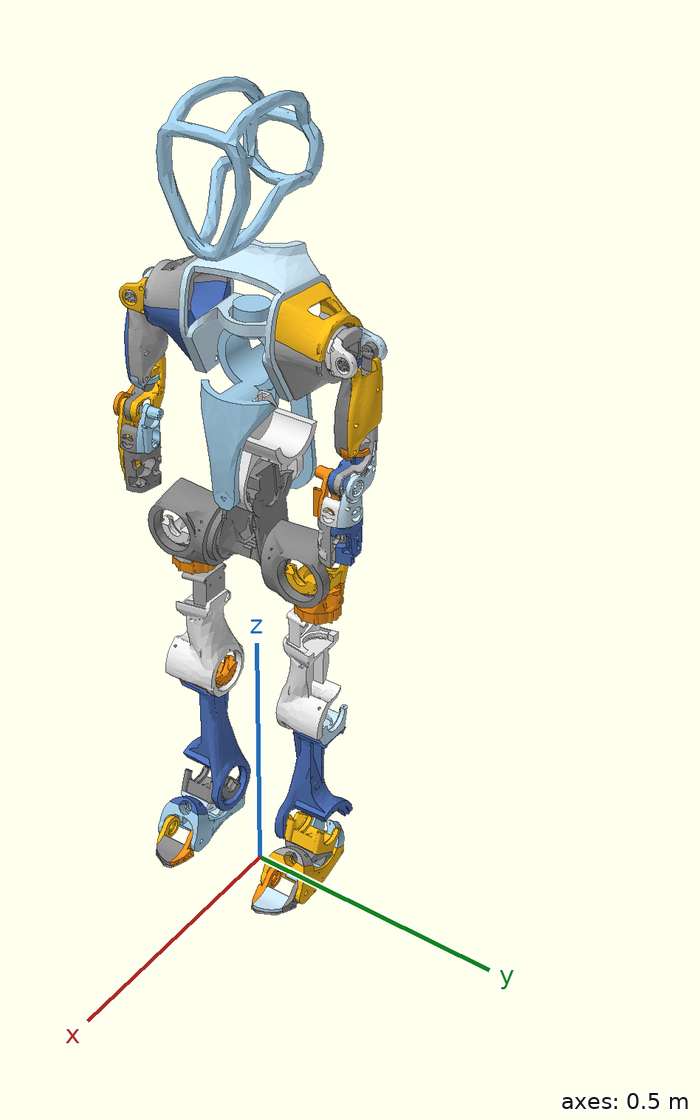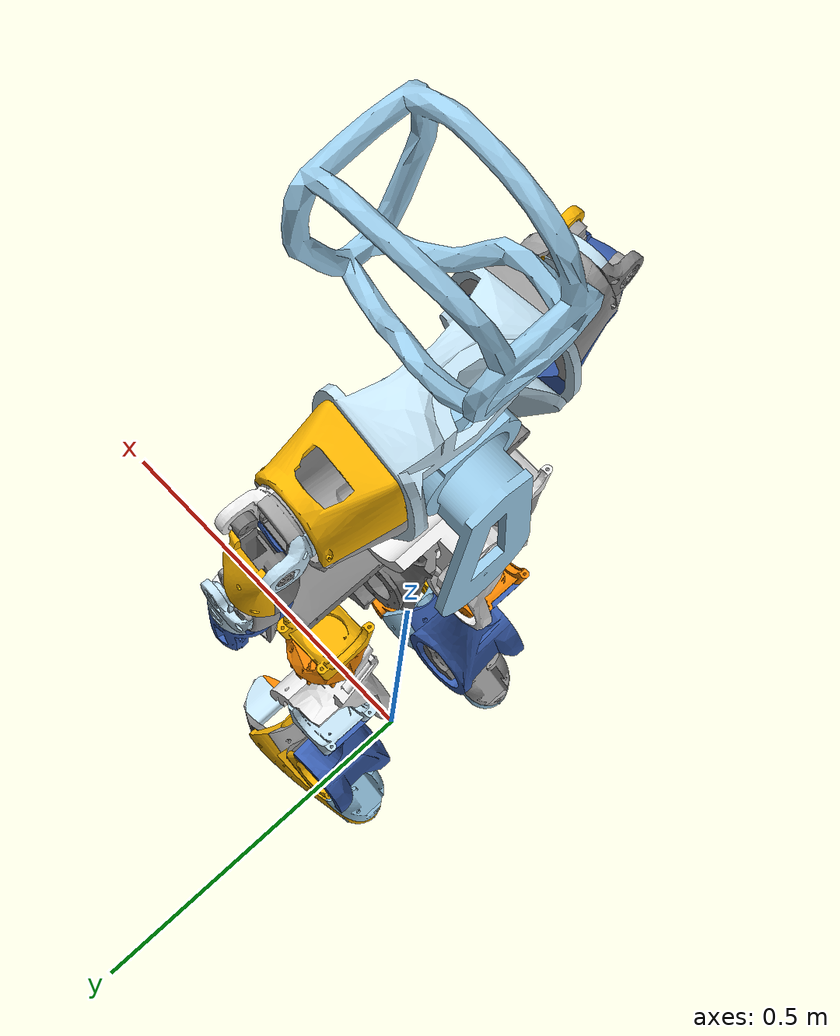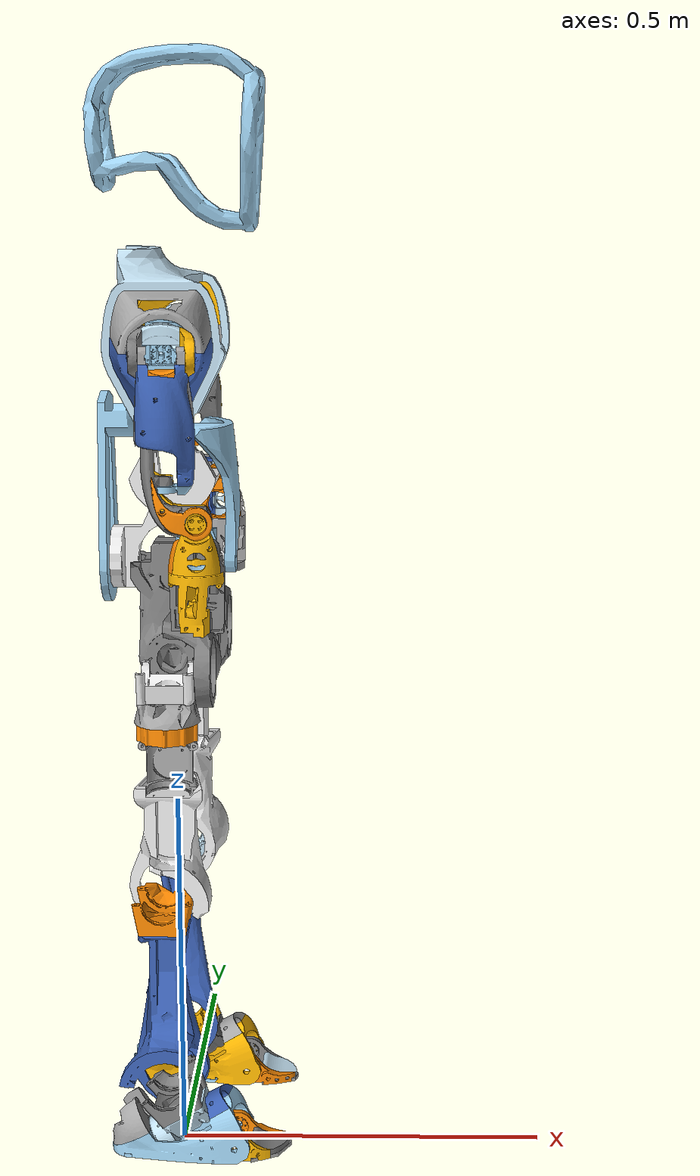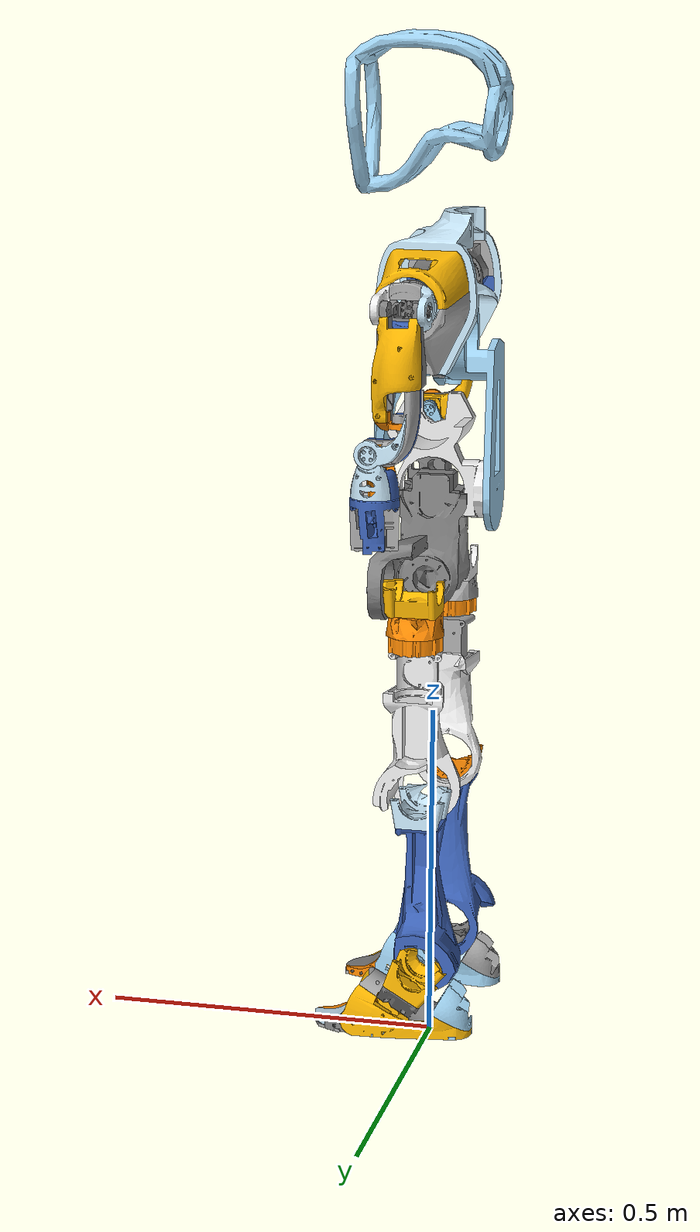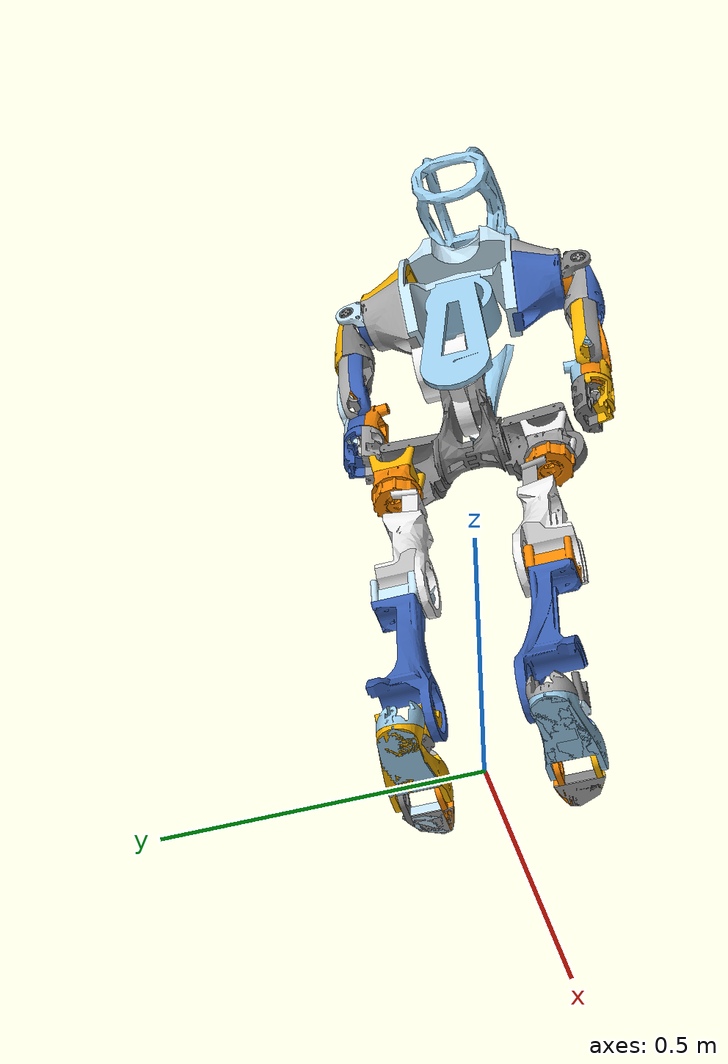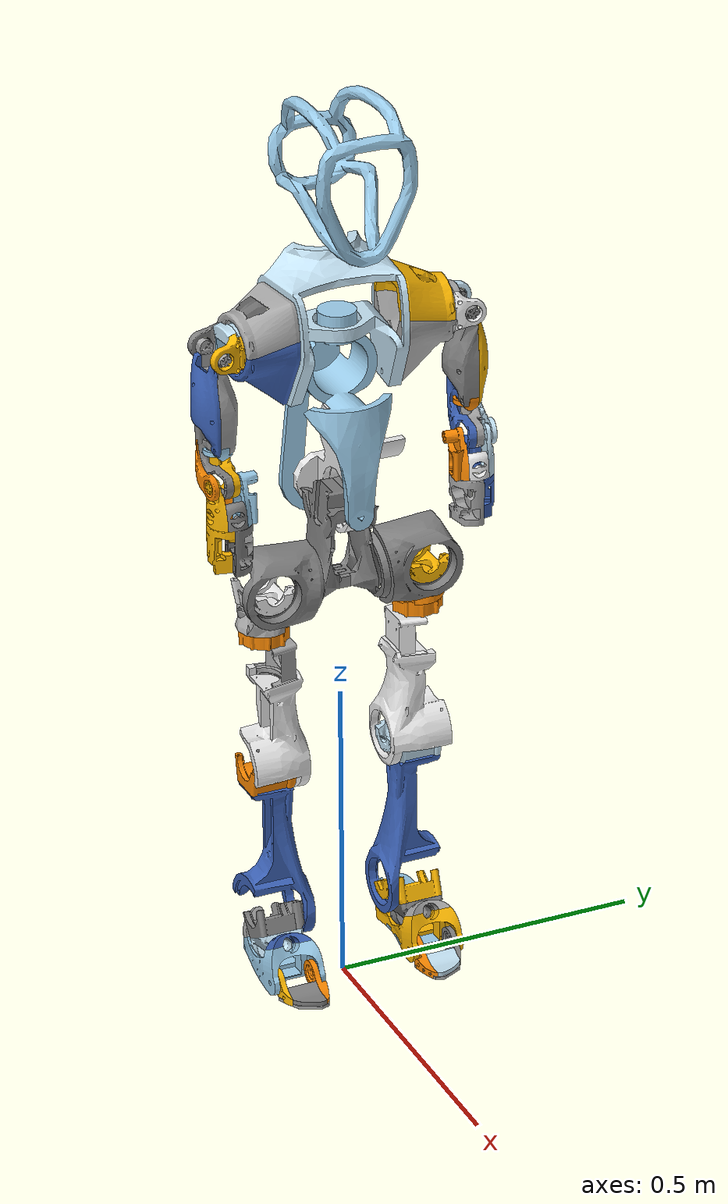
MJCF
<?xml version="1.0" ?>
<!-- Generated using onshape-to-robot -->
<!-- Onshape https://cad.onshape.com/documents/95619c5a3c37ea0971576814/w/26610785af7f329813cd57b4/e/6cae43dcd495e7a1a823b044 -->
<mujoco model="hopejr">
  <compiler angle="radian" meshdir="assets"/>
  <option iterations="1" ls_iterations="5">
    <flag eulerdamp="disable"/>
  </option>
  <default>
    <default class="hopejr">
      <joint frictionloss="0.1" armature="0.005"/>
      <position kp="50" dampratio="1"/>
      <default class="visual">
        <geom type="mesh" contype="0" conaffinity="0" group="2"/>
      </default>
      <default class="collision">
        <geom group="3"/>
      </default>
    </default>
  </default>
  <!-- Additional joints_properties.xml -->
  <default>
    <default class="cybergear">
      <geom contype="0" conaffinity="0"/>
      <joint damping="5" frictionloss="1.0" armature="0.005" range="-2 2"/>
      <position kp="40"/>
    </default>
  </default>
  <!-- Additional sensors.xml -->
  <sensor>
    <gyro site="imu" name="gyro"/>
    <velocimeter site="imu" name="local_linvel"/>
    <accelerometer site="imu" name="accelerometer"/>
    <framezaxis objtype="site" objname="imu" name="upvector"/>
    <framexaxis objtype="site" objname="imu" name="forwardvector"/>
    <framelinvel objtype="site" objname="imu" name="global_linvel"/>
    <frameangvel objtype="site" objname="imu" name="global_angvel"/>
    <framepos objtype="site" objname="imu" name="position"/>
    <framequat objtype="site" objname="imu" name="orientation"/>
    <framelinvel objtype="site" objname="right_foot" name="right_foot_global_linvel"/>
    <framelinvel objtype="site" objname="left_foot" name="left_foot_global_linvel"/>
    <framexaxis objtype="site" objname="left_foot" name="left_foot_upvector"/>
    <framexaxis objtype="site" objname="right_foot" name="right_foot_upvector"/>
    <framepos objtype="site" objname="left_foot" name="left_foot_pos"/>
    <framepos objtype="site" objname="right_foot" name="right_foot_pos"/>
  </sensor>
  <worldbody>
    <!-- Link thorax_02d -->
    <body name="thorax_02d" pos="0 0 1.15" quat="1 0 0 0" childclass="hopejr">
      <freejoint name="thorax_02d_freejoint"/>
      <inertial pos="0.00407148 -6.96142e-06 0.0378596" mass="2.96528" fullinertia="0.0726612 0.0560882 0.031721 0.000120496 -0.00295857 -1.92068e-05"/>
      <!-- Part mirrorchest_03 -->
      <geom type="mesh" class="visual" pos="0.00225538 0.126191 -0.0258308" quat="0.671925 0 2.498e-16 -0.740619" mesh="mirrorchest_03" material="mirrorchest_03_material"/>
      <!-- Part head_mock_up_01g -->
      <geom type="mesh" class="visual" pos="0.0278313 0.000209681 0.223922" quat="0.707102 0.707102 0.00266361 0.00266361" mesh="head_mock_up_01g" material="head_mock_up_01g_material"/>
      <!-- Part thorax_02d -->
      <geom type="mesh" class="visual" pos="9.37011e-19 -4.16241e-17 -0.07" quat="0.704438 -0 -2.22045e-16 0.709765" mesh="thorax_02d" material="thorax_02d_material"/>
      <!-- Part chest_03 -->
      <geom type="mesh" class="visual" pos="0.00415646 -0.126143 -0.0258308" quat="1.84713e-23 0.666326 0.74566 2.62339e-23" mesh="chest_03" material="chest_03_material"/>
      <!-- Part mirrormantle_01f -->
      <geom type="mesh" class="visual" pos="0.00225538 0.126191 -0.0258308" quat="5.82802e-16 0.671925 -0.740619 -6.42385e-16" mesh="mirrormantle_01f" material="mirrormantle_01f_material"/>
      <!-- Part mantle_01f -->
      <geom type="mesh" class="visual" pos="0.00415646 -0.126143 -0.0258308" quat="0.666326 4.80901e-16 6.66134e-16 0.74566" mesh="mantle_01f" material="mantle_01f_material"/>
      <!-- Frame imu -->
      <site group="3" name="imu" pos="-0.0674981 -0.00050853 0.0961692" quat="0.999993 -0 0 0.00376691"/>
      <!-- Link waist_04d -->
      <body name="waist_04d" pos="9.37011e-19 -4.16241e-17 -0.015" quat="2.13049e-24 -0.704438 -0.709765 -7.81598e-24">
        <!-- Joint from thorax_02d to waist_04d -->
        <joint axis="0 0 1" name="torso_yaw" type="hinge" class="cybergear"/>
        <inertial pos="-2.06113e-05 -0.0190493 0.128965" mass="1.05048" fullinertia="0.0126444 0.0105285 0.00422168 1.94178e-05 -7.73776e-06 0.000992709"/>
        <!-- Part waist_04d -->
        <geom type="mesh" class="visual" pos="9.71918e-17 -7.14389e-18 0.296" quat="0.498113 -0.498113 -0.50188 0.50188" mesh="waist_04d" material="waist_04d_material"/>
        <!-- Link torso_pitch_yaw_03 -->
        <body name="torso_pitch_yaw_03" pos="-0.000527364 0.069998 0.296" quat="0.498113 -0.50188 0.498113 0.50188">
          <!-- Joint from waist_04d to torso_pitch_yaw_03 -->
          <joint axis="0 0 1" name="torso_roll" type="hinge" class="cybergear"/>
          <inertial pos="0.0530911 -0.0187022 -0.0786225" mass="0.439769" fullinertia="0.0010388 0.00167533 0.00124827 0.000155504 -0.000249465 7.29288e-05"/>
          <!-- Part torso_pitch_yaw_03 -->
          <geom type="mesh" class="visual" pos="5.55112e-16 -1.22189e-17 -0.068" quat="0.707107 -1.3251e-16 -2.22045e-16 -0.707107" mesh="torso_pitch_yaw_03" material="torso_pitch_yaw_03_material"/>
          <!-- Link pelvis_08 -->
          <body name="pelvis_08" pos="6.10623e-16 -1.22189e-17 -0.068" quat="0.707107 -0.707107 0 2.31797e-17">
            <!-- Joint from torso_pitch_yaw_03 to pelvis_08 -->
            <joint axis="0 0 1" name="torso_pitch" type="hinge" class="cybergear"/>
            <inertial pos="-0.0734106 3.81385e-06 0" mass="0.749221" fullinertia="0.00112457 0.00298368 0.00262983 -1.56701e-20 1.5992e-18 -1.77544e-07"/>
            <!-- Part pelvis_08 -->
            <geom type="mesh" class="visual" pos="0 0 6.16298e-33" quat="0.5 -0.5 -0.5 -0.5" mesh="pelvis_08" material="pelvis_08_material"/>
            <!-- Part pelvis_08_2 -->
            <geom type="mesh" class="visual" pos="0 7.62771e-06 -8.46846e-22" quat="0.5 0.5 0.5 -0.5" mesh="pelvis_08" material="pelvis_08_material"/>
            <!-- Link m5_80_pulley_03h_52 -->
            <body name="m5_80_pulley_03h_52" pos="-0.126943 7.62771e-06 0.0499415" quat="0.0308436 0.706434 -0.706434 -0.0308436">
              <!-- Joint from pelvis_08 to m5_80_pulley_03h_52 -->
              <joint axis="0 0 1" name="right_hip_pitch" type="hinge" class="cybergear"/>
              <inertial pos="0.0365809 -0.0178295 -0.0552817" mass="0.278929" fullinertia="0.00073759 0.000438867 0.000456455 -8.41197e-05 6.9547e-06 -5.50361e-05"/>
              <!-- Part m5_80_pulley_03h_52 -->
              <geom type="mesh" class="visual" pos="0 -5.55112e-17 -0.00442511" quat="0 1 0 0" mesh="m5_80_pulley_03h_52" material="m5_80_pulley_03h_52_material"/>
              <!-- Link cybergear_02b -->
              <body name="cybergear_02b" pos="0.061 0 -0.0794251" quat="0.5 0.5 -0.5 -0.5">
                <!-- Joint from m5_80_pulley_03h_52 to cybergear_02b -->
                <joint axis="0 0 1" name="right_hip_roll" type="hinge" class="cybergear"/>
                <inertial pos="-0.067085 0.00607879 0.0591296" mass="0.615535" fullinertia="0.000490498 0.000570176 0.000521906 9.42627e-06 4.965e-05 -4.55443e-06"/>
                <!-- Part sea_spring_mount_05i_hip_yaw -->
                <geom type="mesh" class="visual" pos="3.88578e-16 4.53804e-15 0.0608" quat="0.477714 -0.521334 -0.477714 -0.521334" mesh="sea_spring_mount_05i_hip_yaw" material="sea_spring_mount_05i_hip_yaw_material"/>
                <!-- Part cybergear_02b -->
                <geom type="mesh" class="visual" pos="-0.0627528 0.00557574 0.0606759" quat="0.521334 -0.477714 0.521334 0.477714" mesh="cybergear_02b" material="cybergear_02b_material"/>
                <!-- Part sea_spring_mount_05i_hip_yaw_2 -->
                <geom type="mesh" class="visual" pos="0 1.38778e-17 0.0608" quat="0.477714 -0.521334 -0.477714 -0.521334" mesh="sea_spring_mount_05i_hip_yaw__2" material="sea_spring_mount_05i_hip_yaw__2_material"/>
                <!-- Link sea_humeral_01ka_femoral -->
                <body name="sea_humeral_01ka_femoral" pos="-0.0958265 0.00846931 0.0606759" quat="0.706434 0.0308436 0.706434 -0.0308436">
                  <!-- Joint from cybergear_02b to sea_humeral_01ka_femoral -->
                  <joint axis="0 0 1" name="right_hip_yaw" type="hinge" class="cybergear"/>
                  <inertial pos="0.0051361 0.0239822 -0.135017" mass="0.603133" fullinertia="0.00238729 0.0025162 0.000658941 0.000100328 0.000213836 -6.29989e-05"/>
                  <!-- Part sea_humeral_01ka_femoral -->
                  <geom type="mesh" class="visual" pos="-0.01 0.0019 -0.2169" quat="0.5 0.5 0.5 0.5" mesh="sea_humeral_01ka_femoral" material="sea_humeral_01ka_femoral_material"/>
                  <!-- Part sea_spring_mount_05i_arm_rotation -->
                  <geom type="mesh" class="visual" pos="0 -2.77556e-17 -0.0393" quat="3.96737e-09 0.707107 -3.96737e-09 0.707107" mesh="sea_spring_mount_05i_arm_rotation" material="sea_spring_mount_05i_arm_rotation_material"/>
                  <!-- Link sea_ankle_02e -->
                  <body name="sea_ankle_02e" pos="-0.01 0.0586 -0.2169" quat="0.5 0.5 -0.5 0.5">
                    <!-- Joint from sea_humeral_01ka_femoral to sea_ankle_02e -->
                    <joint axis="0 0 1" name="right_knee" type="hinge" class="cybergear"/>
                    <inertial pos="-0.152143 0.00248448 0.0356482" mass="0.698353" fullinertia="0.000700514 0.00482338 0.00474653 0.000140851 -0.000302545 -4.50357e-05"/>
                    <!-- Part sea_ankle_02e -->
                    <geom type="mesh" class="visual" pos="-0.266 1.05e-08 0.0516" quat="0.5 0.5 0.5 -0.5" mesh="sea_ankle_02e" material="sea_ankle_02e_material"/>
                    <!-- Part sea_spring_mount_05i_small_knee -->
                    <geom type="mesh" class="visual" pos="-1.11022e-16 1.73472e-18 0.055" quat="0.5 -0.5 -0.5 -0.5" mesh="sea_spring_mount_05i_small_knee" material="sea_spring_mount_05i_small_knee_material"/>
                    <!-- Link sea_spring_mount_05i_ankle -->
                    <body name="sea_spring_mount_05i_ankle" pos="-0.266 1.05e-08 -0.0051" quat="1 2.97972e-15 9.99201e-16 -1.97369e-08">
                      <!-- Joint from sea_ankle_02e to sea_spring_mount_05i_ankle -->
                      <joint axis="0 0 1" name="right_ankle_pitch" type="hinge" class="cybergear"/>
                      <inertial pos="-0.0407821 -0.0158188 0.0504789" mass="0.239095" fullinertia="0.000211094 0.000223022 0.000193976 3.3963e-05 2.54306e-05 6.719e-06"/>
                      <!-- Part sea_spring_mount_05i_ankle -->
                      <geom type="mesh" class="visual" pos="9.55615e-05 3.44826e-05 0.0548" quat="0.612372 -0.353553 -0.612372 -0.353553" mesh="sea_spring_mount_05i_ankle" material="sea_spring_mount_05i_ankle_material"/>
                      <!-- Part sea_spring_mount_05i_ankle_2 -->
                      <geom type="mesh" class="visual" pos="-4.44089e-16 -2.60209e-18 0.0548" quat="0.612372 -0.353553 -0.612372 -0.353553" mesh="sea_spring_mount_05i_ankle__2" material="sea_spring_mount_05i_ankle__2_material"/>
                      <!-- Link heel_04b -->
                      <body name="heel_04b" pos="-0.078798 0.0126822 0.0548" quat="0.353553 0.612372 -0.353553 0.612372">
                        <!-- Joint from sea_spring_mount_05i_ankle to heel_04b -->
                        <joint axis="0 0 1" name="right_ankle_roll" type="hinge" class="cybergear"/>
                        <inertial pos="-0.0012217 0.00542904 0.0247931" mass="0.381627" fullinertia="0.00132369 0.00128054 0.000546581 -1.79076e-05 -2.38176e-05 -0.000346293"/>
                        <!-- Part heel_04b -->
                        <geom type="mesh" class="visual" pos="4.85584e-14 0.0351 0.0432218" quat="3.45967e-13 5.98808e-13 0.866025 0.5" mesh="heel_04b" material="heel_04b_material"/>
                        <!-- Part heel_04b_2 -->
                        <geom type="mesh" class="visual" pos="4.85723e-14 0.0351 0.0432218" quat="3.45977e-13 5.98825e-13 0.866025 0.5" mesh="heel_04b__2" material="heel_04b__2_material"/>
                        <!-- Part right_foot_heel_collision -->
                        <geom type="mesh" class="visual" pos="-0.00669903 0.0260668 0.00374903" quat="0.612372 0.353553 -0.353553 0.612372" mesh="right_foot_heel_collision" material="right_foot_heel_collision_material"/>
                        <geom name="right_foot_bottom" type="mesh" class="collision" pos="-0.00669903 0.0260668 0.00374903" quat="0.612372 0.353553 -0.353553 0.612372" mesh="right_foot_heel_collision" material="right_foot_heel_collision_material"/>
                        <!-- Part heel_04b_3 -->
                        <geom type="mesh" class="visual" pos="4.84196e-14 0.035 0.0432218" quat="3.45977e-13 5.98825e-13 0.866025 0.5" mesh="heel_04b__3" material="heel_04b__3_material"/>
                        <!-- Frame right_foot -->
                        <site group="3" name="right_foot" pos="4.57689e-14 0.0330533 0.02085" quat="0.612372 0.353553 -0.353553 0.612372"/>
                        <!-- Link toes_04b -->
                        <body name="toes_04b" pos="-0.0345 0.0512058 0.089291" quat="0.683013 -0.183013 -0.683013 0.183013">
                          <!-- Joint from heel_04b to toes_04b -->
                          <joint axis="0 0 1" name="right_toe" type="hinge" class="cybergear"/>
                          <inertial pos="0.0273128 0.00913029 -0.0303434" mass="0.0758636" fullinertia="4.76773e-05 7.74599e-05 4.42092e-05 -8.9882e-06 -4.76658e-06 -1.14422e-06"/>
                          <!-- Part right_foot_toe_collision -->
                          <geom type="mesh" class="visual" pos="-0.086327 0.021 -0.0270872" quat="0.707107 0.707107 -0 -1.86474e-16" mesh="right_foot_toe_collision" material="right_foot_toe_collision_material"/>
                          <geom type="mesh" class="collision" pos="-0.086327 0.021 -0.0270872" quat="0.707107 0.707107 -0 -1.86474e-16" mesh="right_foot_toe_collision" material="right_foot_toe_collision_material"/>
                          <!-- Part toes_04b -->
                          <geom type="mesh" class="visual" pos="-0.048 0.009 -0.0345" quat="0.5 -0.5 -0.5 -0.5" mesh="toes_04b" material="toes_04b_material"/>
                          <!-- Part toes_04b_2 -->
                          <geom type="mesh" class="visual" pos="-0.048 0.009 -0.0344" quat="0.5 -0.5 -0.5 -0.5" mesh="toes_04b__2" material="toes_04b__2_material"/>
                          <!-- Part toes_04b_3 -->
                          <geom type="mesh" class="visual" pos="-0.048 0.009 -0.0343" quat="0.5 -0.5 -0.5 -0.5" mesh="toes_04b__3" material="toes_04b__3_material"/>
                        </body>
                      </body>
                    </body>
                  </body>
                </body>
              </body>
            </body>
            <!-- Link mirrorm5_80_pulley_03h_52 -->
            <body name="mirrorm5_80_pulley_03h_52" pos="-0.126339 0 -0.0568402" quat="0.999048 -0 -0.0436194 -0">
              <!-- Joint from pelvis_08 to mirrorm5_80_pulley_03h_52 -->
              <joint axis="0 0 1" name="left_hip_pitch" type="hinge" class="cybergear"/>
              <inertial pos="0.0178295 -0.0365821 -0.0483598" mass="0.278927" fullinertia="0.00043888 0.000737595 0.000456439 -8.41168e-05 5.50391e-05 -6.9516e-06"/>
              <!-- Part mirrorm5_80_pulley_03h_52 -->
              <geom type="mesh" class="visual" pos="-5.55112e-17 8.67362e-19 0.00249989" quat="0.707107 0 4.16334e-17 -0.707107" mesh="mirrorm5_80_pulley_03h_52" material="mirrorm5_80_pulley_03h_52_material"/>
              <!-- Link cybergear_02b_2 -->
              <body name="cybergear_02b_2" pos="-5.55112e-17 -0.052 -0.0725001" quat="0.706434 0.706434 0.0308436 -0.0308436">
                <!-- Joint from mirrorm5_80_pulley_03h_52 to cybergear_02b_2 -->
                <joint axis="0 0 1" name="left_hip_roll" type="hinge" class="cybergear"/>
                <inertial pos="-0.0673596 -0.000320784 -0.0502102" mass="0.615532" fullinertia="0.00048956 0.000571369 0.000521835 -1.39347e-06 -5.05178e-05 -3.86056e-07"/>
                <!-- Part cybergear_02b_2 -->
                <geom type="mesh" class="visual" pos="-0.063 4.55191e-15 -0.0518" quat="0.5 0.5 -0.5 0.5" mesh="cybergear_02b" material="cybergear_02b_material"/>
                <!-- Part mirrorsea_spring_mount_05i_hip_yaw -->
                <geom type="mesh" class="visual" pos="0 0 -0.0518" quat="0.5 0.5 0.5 -0.5" mesh="mirrorsea_spring_mount_05i_hip_yaw" material="mirrorsea_spring_mount_05i_hip_yaw_material"/>
                <!-- Part mirrorsea_spring_mount_05i_hip_yaw_2 -->
                <geom type="mesh" class="visual" pos="0 4.55191e-15 -0.0518" quat="0.5 0.5 0.5 -0.5" mesh="mirrorsea_spring_mount_05i_hip_yaw__2" material="mirrorsea_spring_mount_05i_hip_yaw__2_material"/>
                <!-- Link mirrorsea_humeral_01ka_femoral -->
                <body name="mirrorsea_humeral_01ka_femoral" pos="-0.0962 4.55191e-15 -0.0518" quat="4.71783e-17 0.707107 0 0.707107">
                  <!-- Joint from cybergear_02b_2 to mirrorsea_humeral_01ka_femoral -->
                  <joint axis="0 0 1" name="left_hip_yaw" type="hinge" class="cybergear"/>
                  <inertial pos="0.00513621 -0.023982 -0.135016" mass="0.60312" fullinertia="0.00238728 0.00251618 0.00065893 -0.000100328 0.000213834 6.30041e-05"/>
                  <!-- Part mirrorsea_spring_mount_05i_arm_rotation -->
                  <geom type="mesh" class="visual" pos="0 0 -0.0393" quat="0.707107 -1.68035e-16 -0.707107 -4.44089e-16" mesh="mirrorsea_spring_mount_05i_arm_rotation" material="mirrorsea_spring_mount_05i_arm_rotation_material"/>
                  <!-- Part mirrorsea_humeral_01ka_femoral -->
                  <geom type="mesh" class="visual" pos="-0.01 -0.0019 -0.2169" quat="0.5 0.5 -0.5 -0.5" mesh="mirrorsea_humeral_01ka_femoral" material="mirrorsea_humeral_01ka_femoral_material"/>
                  <!-- Link mirrorsea_ankle_02e -->
                  <body name="mirrorsea_ankle_02e" pos="-0.01 -0.0586 -0.2169" quat="0.5 -0.5 -0.5 -0.5">
                    <!-- Joint from mirrorsea_humeral_01ka_femoral to mirrorsea_ankle_02e -->
                    <joint axis="0 0 1" name="left_knee" type="hinge" class="cybergear"/>
                    <inertial pos="-0.152144 -0.00248491 0.0356485" mass="0.698336" fullinertia="0.000700512 0.00482336 0.00474651 -0.000140848 -0.000302555 4.50366e-05"/>
                    <!-- Part mirrorsea_spring_mount_05i_small_knee -->
                    <geom type="mesh" class="visual" pos="0 0 0.055" quat="0.5 -0.5 -0.5 -0.5" mesh="mirrorsea_spring_mount_05i_small_knee" material="mirrorsea_spring_mount_05i_small_knee_material"/>
                    <!-- Part mirrorsea_ankle_02e -->
                    <geom type="mesh" class="visual" pos="-0.266 1.56819e-15 0.0516" quat="0.5 0.5 0.5 -0.5" mesh="mirrorsea_ankle_02e" material="mirrorsea_ankle_02e_material"/>
                    <!-- Link mirrorsea_spring_mount_05i_ankle -->
                    <body name="mirrorsea_spring_mount_05i_ankle" pos="-0.266 1.56299e-15 -0.0021" quat="9.04516e-17 1 -8.9939e-15 -2.28094e-17">
                      <!-- Joint from mirrorsea_ankle_02e to mirrorsea_spring_mount_05i_ankle -->
                      <joint axis="0 0 1" name="left_ankle_pitch" type="hinge" class="cybergear"/>
                      <inertial pos="-0.0407873 -0.0158098 -0.047479" mass="0.239095" fullinertia="0.000211088 0.000223052 0.000194 3.39872e-05 -2.54365e-05 -6.70887e-06"/>
                      <!-- Part mirrorsea_spring_mount_05i_ankle -->
                      <geom type="mesh" class="visual" pos="0 0 -0.0518" quat="0.612372 0.353553 0.612372 -0.353553" mesh="mirrorsea_spring_mount_05i_ankle" material="mirrorsea_spring_mount_05i_ankle_material"/>
                      <!-- Part mirrorsea_spring_mount_05i_ankle_2 -->
                      <geom type="mesh" class="visual" pos="8.66025e-05 5e-05 -0.0518" quat="0.612372 0.353553 0.612372 -0.353553" mesh="mirrorsea_spring_mount_05i_ankle__2" material="mirrorsea_spring_mount_05i_ankle__2_material"/>
                      <!-- Link mirrorheel_04b -->
                      <body name="mirrorheel_04b" pos="-0.078807 0.0126977 -0.0518" quat="0.612372 0.353553 0.612372 -0.353553">
                        <!-- Joint from mirrorsea_spring_mount_05i_ankle to mirrorheel_04b -->
                        <joint axis="0 0 1" name="left_ankle_roll" type="hinge" class="cybergear"/>
                        <inertial pos="-0.0012218 -0.00532959 0.0247941" mass="0.381619" fullinertia="0.00132368 0.00128052 0.000546573 1.79052e-05 -2.3811e-05 0.000346286"/>
                        <!-- Part left_foot_heel_collision -->
                        <geom type="mesh" class="visual" pos="-0.090399 -0.0259668 0.00374903" quat="0.612372 -0.353553 -0.353553 -0.612372" mesh="left_foot_heel_collision" material="left_foot_heel_collision_material"/>
                        <geom name="left_foot_bottom" type="mesh" class="collision" pos="-0.090399 -0.0259668 0.00374903" quat="0.612372 -0.353553 -0.353553 -0.612372" mesh="left_foot_heel_collision" material="left_foot_heel_collision_material"/>
                        <!-- Part mirrorheel_04b -->
                        <geom type="mesh" class="visual" pos="0 -0.0349 0.0432218" quat="1.11022e-16 1.01544e-17 -0.5 -0.866025" mesh="mirrorheel_04b" material="mirrorheel_04b_material"/>
                        <!-- Part mirrorheel_04b_2 -->
                        <geom type="mesh" class="visual" pos="0 -0.035 0.0432218" quat="0 -9.87963e-18 0.5 0.866025" mesh="mirrorheel_04b__2" material="mirrorheel_04b__2_material"/>
                        <!-- Part mirrorheel_04b_3 -->
                        <geom type="mesh" class="visual" pos="0 -0.035 0.0432218" quat="0 0 -0.5 -0.866025" mesh="mirrorheel_04b__3" material="mirrorheel_04b__3_material"/>
                        <!-- Frame left_foot -->
                        <site group="3" name="left_foot" pos="2.77556e-17 -0.0329533 0.02085" quat="0.612372 -0.353553 -0.353553 -0.612372"/>
                        <!-- Link mirrortoes_04b -->
                        <body name="mirrortoes_04b" pos="-0.0345 -0.0511058 0.089291" quat="0.683013 0.183013 -0.683013 -0.183013">
                          <!-- Joint from mirrorheel_04b to mirrortoes_04b -->
                          <joint axis="0 0 1" name="left_toe" type="hinge" class="cybergear"/>
                          <inertial pos="0.0273127 -0.00913028 -0.0303434" mass="0.0758634" fullinertia="4.76774e-05 7.74597e-05 4.4209e-05 8.98816e-06 -4.76652e-06 1.14421e-06"/>
                          <!-- Part mirrortoes_04b -->
                          <geom type="mesh" class="visual" pos="-0.048 -0.009 -0.0345" quat="0.5 -0.5 -0.5 -0.5" mesh="mirrortoes_04b" material="mirrortoes_04b_material"/>
                          <!-- Part mirrortoes_04b_2 -->
                          <geom type="mesh" class="visual" pos="-0.048 -0.009 -0.0344" quat="0.5 -0.5 -0.5 -0.5" mesh="mirrortoes_04b__2" material="mirrortoes_04b__2_material"/>
                          <!-- Part left_foot_toe_collision -->
                          <geom type="mesh" class="visual" pos="-0.0863267 -0.021 0.0566129" quat="0.707107 -0.707107 0 -7.33992e-18" mesh="left_foot_toe_collision" material="left_foot_toe_collision_material"/>
                          <geom type="mesh" class="collision" pos="-0.0863267 -0.021 0.0566129" quat="0.707107 -0.707107 0 -7.33992e-18" mesh="left_foot_toe_collision" material="left_foot_toe_collision_material"/>
                          <!-- Part mirrortoes_04b_3 -->
                          <geom type="mesh" class="visual" pos="-0.048 -0.009 -0.0343" quat="0.5 -0.5 -0.5 -0.5" mesh="mirrortoes_04b__3" material="mirrortoes_04b__3_material"/>
                        </body>
                      </body>
                    </body>
                  </body>
                </body>
              </body>
            </body>
          </body>
        </body>
      </body>
      <!-- Link hl_shoulder_yaw_03a -->
      <body name="hl_shoulder_yaw_03a" pos="0.00694291 -0.150862 -0.0258308" quat="0.527261 -0.471164 -0.527261 -0.471164">
        <!-- Joint from thorax_02d to hl_shoulder_yaw_03a -->
        <joint axis="0 0 1" name="right_shoulder_pitch" type="hinge" class="cybergear"/>
        <inertial pos="-0.000431902 -0.000146853 -0.0273848" mass="0.176309" fullinertia="0.000130995 0.000105595 0.000149717 4.81528e-07 5.7942e-07 2.61245e-07"/>
        <!-- Part hl_shoulder_pitch_roller_clip_03a -->
        <geom type="mesh" class="visual" pos="-1.35174e-05 7.80626e-17 -0.0214" quat="0.707107 -8.20755e-17 -3.33067e-16 -0.707107" mesh="hl_shoulder_pitch_roller_clip_03a" material="hl_shoulder_pitch_roller_clip_03a_material"/>
        <!-- Part hl_shoulder_pitch_roller_clip_03a_2 -->
        <geom type="mesh" class="visual" pos="-1.35174e-05 -0.0002 -0.0214" quat="0.707107 -4.50264e-16 3.60822e-16 -0.707107" mesh="hl_shoulder_pitch_roller_clip_03a__2" material="hl_shoulder_pitch_roller_clip_03a__2_material"/>
        <!-- Part hl_shoulder_yaw_03a -->
        <geom type="mesh" class="visual" pos="0.012 0 0" quat="0.707107 -0.707107 0 -9.24997e-32" mesh="hl_shoulder_yaw_03a" material="hl_shoulder_yaw_03a_material"/>
        <!-- Part hl_shoulder_pitch_roller_clip_03a_3 -->
        <geom type="mesh" class="visual" pos="-1.35174e-05 -3.46945e-18 -0.0214" quat="0.707107 -4.41086e-17 -2.22045e-16 -0.707107" mesh="hl_shoulder_pitch_roller_clip_03a__3" material="hl_shoulder_pitch_roller_clip_03a__3_material"/>
        <!-- Part hl_shoulder_pitch_roller_clip_03a_4 -->
        <geom type="mesh" class="visual" pos="-1.35174e-05 0.0002 -0.0214" quat="0.707107 -3.43292e-17 -6.93889e-17 -0.707107" mesh="hl_shoulder_pitch_roller_clip_03a__4" material="hl_shoulder_pitch_roller_clip_03a__4_material"/>
        <!-- Link hl_humeral_03a -->
        <body name="hl_humeral_03a" pos="-1.35174e-05 0.04015 -0.0556" quat="0.707107 -0.707107 1.11022e-15 -2.81686e-16">
          <!-- Joint from hl_shoulder_yaw_03a to hl_humeral_03a -->
          <joint axis="0 0 1" name="right_shoulder_roll" type="hinge" class="cybergear"/>
          <inertial pos="-0.0714633 0.00178243 -0.0373091" mass="0.332565" fullinertia="0.000218226 0.000540858 0.000482877 -1.6259e-05 6.79165e-05 5.42911e-06"/>
          <!-- Part hl_humeral_03a -->
          <geom type="mesh" class="visual" pos="-1.11022e-15 -5e-05 -0.0402" quat="1 -0 1.11022e-16 1.66533e-16" mesh="hl_humeral_03a" material="hl_humeral_03a_material"/>
          <!-- Part hl_humeral_03a_2 -->
          <geom type="mesh" class="visual" pos="0 0 -0.0402" quat="1 0 -0 -7.88861e-31" mesh="hl_humeral_03a__2" material="hl_humeral_03a__2_material"/>
          <!-- Part hl_humeral_03a_3 -->
          <geom type="mesh" class="visual" pos="-1.38778e-17 -0.0001 -0.0402" quat="1 -0 -0 7.72193e-19" mesh="hl_humeral_03a__3" material="hl_humeral_03a__3_material"/>
          <!-- Link hl_hum_elbow_03 -->
          <body name="hl_hum_elbow_03" pos="-0.1438 -5e-05 -0.0407565" quat="0.00266361 0.707102 0.00266361 0.707102">
            <!-- Joint from hl_humeral_03a to hl_hum_elbow_03 -->
            <joint axis="0 0 1" name="right_elbow_yaw" type="hinge" class="cybergear"/>
            <inertial pos="0.00122377 -0.0029525 -0.0191756" mass="0.130391" fullinertia="0.000209536 0.000249745 9.75661e-05 8.24276e-06 7.13689e-05 -1.28557e-05"/>
            <!-- Part hl_hum_elbow_03 -->
            <geom type="mesh" class="visual" pos="0.012 2.77556e-17 0.0464" quat="0.707107 -0.707107 0 3.81844e-18" mesh="hl_hum_elbow_03" material="hl_hum_elbow_03_material"/>
            <!-- Part hl_hum_elbow_03_2 -->
            <geom type="mesh" class="visual" pos="0.012 2.77556e-17 0.0464" quat="0.707107 -0.707107 0 -1.00332e-17" mesh="hl_hum_elbow_03__2" material="hl_hum_elbow_03__2_material"/>
            <!-- Part hl_hum_elbow_03_3 -->
            <geom type="mesh" class="visual" pos="0.012 2.77556e-17 0.0464" quat="0.707107 -0.707107 0 3.81844e-18" mesh="hl_hum_elbow_03__3" material="hl_hum_elbow_03__3_material"/>
            <!-- Link hl_prox_forearm_03e -->
            <body name="hl_prox_forearm_03e" pos="0.0382 -0.0324 -0.056" quat="0.5 0.5 -0.5 0.5">
              <!-- Joint from hl_hum_elbow_03 to hl_prox_forearm_03e -->
              <joint axis="0 0 1" name="right_elbow_pitch" type="hinge" class="cybergear"/>
              <inertial pos="-0.0388066 0.00093388 -0.0356244" mass="0.116863" fullinertia="8.81194e-05 0.000105215 9.20621e-05 1.73856e-06 5.87523e-06 -3.50772e-06"/>
              <!-- Part hl_prox_forearm_03e -->
              <geom type="mesh" class="visual" pos="-2.77556e-17 1.73472e-17 -0.0343" quat="1.73472e-16 -1 2.16451e-16 5.18554e-16" mesh="hl_prox_forearm_03e" material="hl_prox_forearm_03e_material"/>
              <!-- Part hl_prox_forearm_03e_2 -->
              <geom type="mesh" class="visual" pos="8.32667e-17 1.38778e-17 -0.0343" quat="1.73472e-16 -1 2.16451e-16 4.58982e-16" mesh="hl_prox_forearm_03e__2" material="hl_prox_forearm_03e__2_material"/>
              <!-- Part hl_prox_forearm_03e_3 -->
              <geom type="mesh" class="visual" pos="8.32667e-17 6.93889e-18 -0.0342" quat="1.73472e-16 -1 2.14497e-16 5.18554e-16" mesh="hl_prox_forearm_03e__3" material="hl_prox_forearm_03e__3_material"/>
              <!-- Part hl_prox_forearm_03e_4 -->
              <geom type="mesh" class="visual" pos="2.77556e-17 0 -0.0344" quat="0 1 0 0" mesh="hl_prox_forearm_03e__4" material="hl_prox_forearm_03e__4_material"/>
              <!-- Link mirrorhl_fore_arm_02c_part_01j -->
              <body name="mirrorhl_fore_arm_02c_part_01j" pos="-0.06438 -2.77556e-17 -0.0343" quat="0.5 0.5 0.5 0.5">
                <!-- Joint from hl_prox_forearm_03e to mirrorhl_fore_arm_02c_part_01j -->
                <joint axis="0 0 1" name="right_forearm_yaw" type="hinge" class="cybergear"/>
                <inertial pos="-0.00140023 -0.00320089 -0.0425478" mass="0.0971947" fullinertia="8.35223e-05 7.77236e-05 6.6518e-05 -1.88484e-07 -1.65232e-06 -2.93001e-06"/>
                <!-- Part mirrorhl_fore_arm_02c_part_01j -->
                <geom type="mesh" class="visual" pos="-0.0491308 -0.110857 0.285457" quat="0.759405 -0.145623 -0.622766 -0.119421" mesh="mirrorhl_fore_arm_02c_part_01j" material="mirrorhl_fore_arm_02c_part_01j_material"/>
                <!-- Part mirrorhl_fore_arm_02c_part_01j_2 -->
                <geom type="mesh" class="visual" pos="-0.049131 -0.110858 0.285457" quat="0.759405 -0.145623 -0.622766 -0.119421" mesh="mirrorhl_fore_arm_02c_part_01j__2" material="mirrorhl_fore_arm_02c_part_01j__2_material"/>
              </body>
            </body>
          </body>
        </body>
      </body>
      <!-- Link mirrorhl_shoulder_yaw_03a -->
      <body name="mirrorhl_shoulder_yaw_03a" pos="0.00701727 0.175035 -0.0258308" quat="0.0343469 -0.0343469 -0.706272 0.706272">
        <!-- Joint from thorax_02d to mirrorhl_shoulder_yaw_03a -->
        <joint axis="0 0 1" name="left_shoulder_pitch" type="hinge" class="cybergear"/>
        <inertial pos="0.000146801 0.000431893 -0.00318482" mass="0.176309" fullinertia="0.000105595 0.000130995 0.000149716 4.81482e-07 -2.61516e-07 -5.79432e-07"/>
        <!-- Part mirrorhl_shoulder_yaw_03a -->
        <geom type="mesh" class="visual" pos="-5.55112e-16 -0.012 0.0242" quat="0.5 -0.5 0.5 -0.5" mesh="mirrorhl_shoulder_yaw_03a" material="mirrorhl_shoulder_yaw_03a_material"/>
        <!-- Part mirrorhl_shoulder_pitch_roller_clip_03a -->
        <geom type="mesh" class="visual" pos="1.21431e-17 1.35174e-05 0.0028" quat="3.27847e-18 -1 2.34189e-14 -3.44338e-17" mesh="mirrorhl_shoulder_pitch_roller_clip_03a" material="mirrorhl_shoulder_pitch_roller_clip_03a_material"/>
        <!-- Part mirrorhl_shoulder_pitch_roller_clip_03a_2 -->
        <geom type="mesh" class="visual" pos="5.37764e-17 1.35174e-05 0.0028" quat="1.26277e-16 1 -2.34262e-14 -4.49209e-17" mesh="mirrorhl_shoulder_pitch_roller_clip_03a__2" material="mirrorhl_shoulder_pitch_roller_clip_03a__2_material"/>
        <!-- Part mirrorhl_shoulder_pitch_roller_clip_03a_3 -->
        <geom type="mesh" class="visual" pos="-0.0002 1.35174e-05 0.0028" quat="2.50707e-16 1 -2.35355e-14 -3.41135e-17" mesh="mirrorhl_shoulder_pitch_roller_clip_03a__3" material="mirrorhl_shoulder_pitch_roller_clip_03a__3_material"/>
        <!-- Part mirrorhl_shoulder_pitch_roller_clip_03a_4 -->
        <geom type="mesh" class="visual" pos="0.0002 1.35174e-05 0.0028" quat="2.51848e-16 1 -2.32591e-14 -4.03434e-17" mesh="mirrorhl_shoulder_pitch_roller_clip_03a__4" material="mirrorhl_shoulder_pitch_roller_clip_03a__4_material"/>
        <!-- Link mirrorhl_humeral_03a -->
        <body name="mirrorhl_humeral_03a" pos="-0.0403 1.35174e-05 -0.0314" quat="0.5 -0.5 0.5 -0.5">
          <!-- Joint from mirrorhl_shoulder_yaw_03a to mirrorhl_humeral_03a -->
          <joint axis="0 0 1" name="left_shoulder_roll" type="hinge" class="cybergear"/>
          <inertial pos="-0.0714631 0.00181679 0.0374596" mass="0.332573" fullinertia="0.000218624 0.000540855 0.000483269 -1.62647e-05 -6.79083e-05 -5.43313e-06"/>
          <!-- Part mirrorhl_humeral_03a -->
          <geom type="mesh" class="visual" pos="3.46945e-18 -5e-05 0.04035" quat="1 -2.86498e-16 0 -1.8735e-16" mesh="mirrorhl_humeral_03a" material="mirrorhl_humeral_03a_material"/>
          <!-- Part mirrorhl_humeral_03a_2 -->
          <geom type="mesh" class="visual" pos="3.46945e-18 0 0.04035" quat="1 -1.8007e-16 -2.22045e-16 -3.33067e-16" mesh="mirrorhl_humeral_03a__2" material="mirrorhl_humeral_03a__2_material"/>
          <!-- Part mirrorhl_humeral_03a_3 -->
          <geom type="mesh" class="visual" pos="3.46945e-18 5.55112e-17 0.04035" quat="1 -2.86498e-16 -2.22045e-16 -1.80411e-16" mesh="mirrorhl_humeral_03a__3" material="mirrorhl_humeral_03a__3_material"/>
          <!-- Link mirrorhl_hum_elbow_03 -->
          <body name="mirrorhl_hum_elbow_03" pos="-0.1438 -5e-05 0.0409065" quat="0.707102 -0.00266361 0.707102 -0.00266361">
            <!-- Joint from mirrorhl_humeral_03a to mirrorhl_hum_elbow_03 -->
            <joint axis="0 0 1" name="left_elbow_yaw" type="hinge" class="cybergear"/>
            <inertial pos="0.00122338 0.00295337 -0.0191753" mass="0.130399" fullinertia="0.000209541 0.00024975 9.7572e-05 -8.24153e-06 7.13706e-05 1.28552e-05"/>
            <!-- Part mirrorhl_hum_elbow_03 -->
            <geom type="mesh" class="visual" pos="0.012 0 0.0464" quat="0.707107 -0.707107 -0 -9.39974e-18" mesh="mirrorhl_hum_elbow_03" material="mirrorhl_hum_elbow_03_material"/>
            <!-- Part mirrorhl_hum_elbow_03_2 -->
            <geom type="mesh" class="visual" pos="0.012 0 0.0464" quat="0.707107 -0.707107 -0 -9.39974e-18" mesh="mirrorhl_hum_elbow_03__2" material="mirrorhl_hum_elbow_03__2_material"/>
            <!-- Part mirrorhl_hum_elbow_03_3 -->
            <geom type="mesh" class="visual" pos="0.012 0 0.0464" quat="0.707107 -0.707107 -0 2.43719e-17" mesh="mirrorhl_hum_elbow_03__3" material="mirrorhl_hum_elbow_03__3_material"/>
            <!-- Link mirrorhl_prox_forearm_03e -->
            <body name="mirrorhl_prox_forearm_03e" pos="0.0382 0.0324 -0.056" quat="0.5 -0.5 -0.5 -0.5">
              <!-- Joint from mirrorhl_hum_elbow_03 to mirrorhl_prox_forearm_03e -->
              <joint axis="0 0 1" name="left_elbow_pitch" type="hinge" class="cybergear"/>
              <inertial pos="-0.0388065 -0.000933941 -0.0356243" mass="0.116864" fullinertia="8.812e-05 0.000105215 9.20626e-05 -1.7386e-06 5.87522e-06 3.50769e-06"/>
              <!-- Part mirrorhl_prox_forearm_03e -->
              <geom type="mesh" class="visual" pos="0 4.51028e-17 -0.0343" quat="1 -6.30478e-17 0 0" mesh="mirrorhl_prox_forearm_03e" material="mirrorhl_prox_forearm_03e_material"/>
              <!-- Part mirrorhl_prox_forearm_03e_2 -->
              <geom type="mesh" class="visual" pos="5.55112e-17 4.85723e-17 -0.0342" quat="1 -5.49313e-17 3.33067e-16 1.11022e-16" mesh="mirrorhl_prox_forearm_03e__2" material="mirrorhl_prox_forearm_03e__2_material"/>
              <!-- Part mirrorhl_prox_forearm_03e_3 -->
              <geom type="mesh" class="visual" pos="2.77556e-17 -5.20417e-17 -0.0343" quat="1 -6.30478e-17 0 0" mesh="mirrorhl_prox_forearm_03e__3" material="mirrorhl_prox_forearm_03e__3_material"/>
              <!-- Part mirrorhl_prox_forearm_03e_4 -->
              <geom type="mesh" class="visual" pos="0 0 -0.0344" quat="1 -0 0 0" mesh="mirrorhl_prox_forearm_03e__4" material="mirrorhl_prox_forearm_03e__4_material"/>
              <!-- Link hl_fore_arm_02c_part_01j -->
              <body name="hl_fore_arm_02c_part_01j" pos="-0.06438 -4.85723e-17 -0.0343" quat="0.5 -0.5 0.5 -0.5">
                <!-- Joint from mirrorhl_prox_forearm_03e to hl_fore_arm_02c_part_01j -->
                <joint axis="0 0 1" name="left_forearm_yaw" type="hinge" class="cybergear"/>
                <inertial pos="-0.00140027 0.00320085 -0.0425478" mass="0.0971945" fullinertia="8.35224e-05 7.7724e-05 6.65178e-05 1.88422e-07 -1.65249e-06 2.92982e-06"/>
                <!-- Part hl_fore_arm_02c_part_01j -->
                <geom type="mesh" class="visual" pos="-0.049131 0.110858 0.285457" quat="0.145623 -0.759405 -0.119421 -0.622766" mesh="hl_fore_arm_02c_part_01j" material="hl_fore_arm_02c_part_01j_material"/>
                <!-- Part hl_fore_arm_02c_part_01j_2 -->
                <geom type="mesh" class="visual" pos="-0.0491308 0.110857 0.285457" quat="0.145623 -0.759405 -0.119421 -0.622766" mesh="hl_fore_arm_02c_part_01j__2" material="hl_fore_arm_02c_part_01j__2_material"/>
              </body>
            </body>
          </body>
        </body>
      </body>
    </body>
  </worldbody>
  <asset>
    <mesh file="mirrorsea_spring_mount_05i_arm_rotation.stl"/>
    <mesh file="mirrorheel_04b.stl"/>
    <mesh file="sea_spring_mount_05i_ankle.stl"/>
    <mesh file="thorax_02d.stl"/>
    <mesh file="cybergear_02b.stl"/>
    <mesh file="hl_prox_forearm_03e__4.stl"/>
    <mesh file="mirrorhl_humeral_03a.stl"/>
    <mesh file="left_foot_heel_collision.stl"/>
    <mesh file="mirrorhl_fore_arm_02c_part_01j__2.stl"/>
    <mesh file="hl_shoulder_pitch_roller_clip_03a__3.stl"/>
    <mesh file="mirrorm5_80_pulley_03h_52.stl"/>
    <mesh file="mirrormantle_01f.stl"/>
    <mesh file="mirrortoes_04b__3.stl"/>
    <mesh file="sea_ankle_02e.stl"/>
    <mesh file="mirrorhl_prox_forearm_03e__2.stl"/>
    <mesh file="waist_04d.stl"/>
    <mesh file="hl_humeral_03a.stl"/>
    <mesh file="sea_spring_mount_05i_small_knee.stl"/>
    <mesh file="hl_prox_forearm_03e.stl"/>
    <mesh file="toes_04b__3.stl"/>
    <mesh file="mirrorhl_shoulder_yaw_03a.stl"/>
    <mesh file="hl_prox_forearm_03e__3.stl"/>
    <mesh file="toes_04b__2.stl"/>
    <mesh file="mirrorhl_prox_forearm_03e__3.stl"/>
    <mesh file="hl_fore_arm_02c_part_01j__2.stl"/>
    <mesh file="mirrorheel_04b__3.stl"/>
    <mesh file="heel_04b.stl"/>
    <mesh file="mirrorhl_prox_forearm_03e__4.stl"/>
    <mesh file="mirrortoes_04b.stl"/>
    <mesh file="mirrorsea_spring_mount_05i_small_knee.stl"/>
    <mesh file="torso_pitch_yaw_03.stl"/>
    <mesh file="mirrorsea_ankle_02e.stl"/>
    <mesh file="toes_04b.stl"/>
    <mesh file="left_foot_toe_collision.stl"/>
    <mesh file="hl_humeral_03a__2.stl"/>
    <mesh file="mirrorhl_shoulder_pitch_roller_clip_03a__3.stl"/>
    <mesh file="mirrorchest_03.stl"/>
    <mesh file="mirrorhl_fore_arm_02c_part_01j.stl"/>
    <mesh file="hl_shoulder_yaw_03a.stl"/>
    <mesh file="sea_spring_mount_05i_hip_yaw.stl"/>
    <mesh file="sea_spring_mount_05i_arm_rotation.stl"/>
    <mesh file="hl_shoulder_pitch_roller_clip_03a.stl"/>
    <mesh file="hl_shoulder_pitch_roller_clip_03a__4.stl"/>
    <mesh file="hl_fore_arm_02c_part_01j.stl"/>
    <mesh file="mirrorhl_humeral_03a__2.stl"/>
    <mesh file="pelvis_08.stl"/>
    <mesh file="hl_hum_elbow_03__3.stl"/>
    <mesh file="hl_humeral_03a__3.stl"/>
    <mesh file="mirrorheel_04b__2.stl"/>
    <mesh file="heel_04b__3.stl"/>
    <mesh file="hl_hum_elbow_03.stl"/>
    <mesh file="mirrorhl_prox_forearm_03e.stl"/>
    <mesh file="sea_spring_mount_05i_ankle__2.stl"/>
    <mesh file="mirrorhl_hum_elbow_03.stl"/>
    <mesh file="mirrorsea_spring_mount_05i_hip_yaw.stl"/>
    <mesh file="right_foot_heel_collision.stl"/>
    <mesh file="mirrorsea_humeral_01ka_femoral.stl"/>
    <mesh file="mirrorhl_hum_elbow_03__2.stl"/>
    <mesh file="head_mock_up_01g.stl"/>
    <mesh file="mirrorsea_spring_mount_05i_ankle__2.stl"/>
    <mesh file="mirrortoes_04b__2.stl"/>
    <mesh file="mirrorhl_shoulder_pitch_roller_clip_03a__2.stl"/>
    <mesh file="sea_humeral_01ka_femoral.stl"/>
    <mesh file="mirrorhl_shoulder_pitch_roller_clip_03a.stl"/>
    <mesh file="hl_prox_forearm_03e__2.stl"/>
    <mesh file="mirrorhl_shoulder_pitch_roller_clip_03a__4.stl"/>
    <mesh file="mirrorhl_hum_elbow_03__3.stl"/>
    <mesh file="mirrorsea_spring_mount_05i_ankle.stl"/>
    <mesh file="m5_80_pulley_03h_52.stl"/>
    <mesh file="mirrorhl_humeral_03a__3.stl"/>
    <mesh file="heel_04b__2.stl"/>
    <mesh file="hl_shoulder_pitch_roller_clip_03a__2.stl"/>
    <mesh file="hl_hum_elbow_03__2.stl"/>
    <mesh file="mirrorsea_spring_mount_05i_hip_yaw__2.stl"/>
    <mesh file="sea_spring_mount_05i_hip_yaw__2.stl"/>
    <mesh file="chest_03.stl"/>
    <mesh file="mantle_01f.stl"/>
    <mesh file="right_foot_toe_collision.stl"/>
    <material name="mirrorchest_03_material" rgba="0.647059 0.647059 0.647059 1"/>
    <material name="head_mock_up_01g_material" rgba="0.615686 0.811765 0.929412 1"/>
    <material name="thorax_02d_material" rgba="0.768627 0.886275 0.952941 1"/>
    <material name="chest_03_material" rgba="0.231373 0.380392 0.705882 1"/>
    <material name="mirrormantle_01f_material" rgba="0.980392 0.713725 0.00392157 1"/>
    <material name="mantle_01f_material" rgba="0.647059 0.647059 0.647059 1"/>
    <material name="waist_04d_material" rgba="0.615686 0.811765 0.929412 1"/>
    <material name="torso_pitch_yaw_03_material" rgba="0.917647 0.917647 0.917647 1"/>
    <material name="pelvis_08_material" rgba="0.498039 0.498039 0.498039 1"/>
    <material name="m5_80_pulley_03h_52_material" rgba="0.498039 0.498039 0.498039 1"/>
    <material name="sea_spring_mount_05i_hip_yaw_material" rgba="0.647059 0.647059 0.647059 1"/>
    <material name="cybergear_02b_material" rgba="0.972549 0.529412 0.00392157 1"/>
    <material name="sea_spring_mount_05i_hip_yaw__2_material" rgba="0.917647 0.917647 0.917647 1"/>
    <material name="sea_humeral_01ka_femoral_material" rgba="0.917647 0.917647 0.917647 1"/>
    <material name="sea_spring_mount_05i_arm_rotation_material" rgba="0.647059 0.647059 0.647059 1"/>
    <material name="sea_ankle_02e_material" rgba="0.231373 0.380392 0.705882 1"/>
    <material name="sea_spring_mount_05i_small_knee_material" rgba="0.972549 0.529412 0.00392157 1"/>
    <material name="sea_spring_mount_05i_ankle_material" rgba="0.768627 0.886275 0.952941 1"/>
    <material name="sea_spring_mount_05i_ankle__2_material" rgba="0.498039 0.498039 0.498039 1"/>
    <material name="heel_04b_material" rgba="0.647059 0.647059 0.647059 1"/>
    <material name="heel_04b__2_material" rgba="0.231373 0.380392 0.705882 1"/>
    <material name="right_foot_heel_collision_material" rgba="0.615686 0.811765 0.929412 1"/>
    <material name="heel_04b__3_material" rgba="0.615686 0.811765 0.929412 1"/>
    <material name="right_foot_toe_collision_material" rgba="0.647059 0.647059 0.647059 1"/>
    <material name="toes_04b_material" rgba="0.972549 0.529412 0.00392157 1"/>
    <material name="toes_04b__2_material" rgba="0.498039 0.498039 0.498039 1"/>
    <material name="toes_04b__3_material" rgba="0.980392 0.713725 0.00392157 1"/>
    <material name="mirrorm5_80_pulley_03h_52_material" rgba="0.498039 0.498039 0.498039 1"/>
    <material name="mirrorsea_spring_mount_05i_hip_yaw_material" rgba="0.980392 0.713725 0.00392157 1"/>
    <material name="mirrorsea_spring_mount_05i_hip_yaw__2_material" rgba="0.972549 0.529412 0.00392157 1"/>
    <material name="mirrorsea_spring_mount_05i_arm_rotation_material" rgba="0.917647 0.917647 0.917647 1"/>
    <material name="mirrorsea_humeral_01ka_femoral_material" rgba="0.917647 0.917647 0.917647 1"/>
    <material name="mirrorsea_spring_mount_05i_small_knee_material" rgba="0.768627 0.886275 0.952941 1"/>
    <material name="mirrorsea_ankle_02e_material" rgba="0.231373 0.380392 0.705882 1"/>
    <material name="mirrorsea_spring_mount_05i_ankle_material" rgba="0.980392 0.713725 0.00392157 1"/>
    <material name="mirrorsea_spring_mount_05i_ankle__2_material" rgba="0.498039 0.498039 0.498039 1"/>
    <material name="left_foot_heel_collision_material" rgba="0.615686 0.811765 0.929412 1"/>
    <material name="mirrorheel_04b_material" rgba="0.980392 0.713725 0.00392157 1"/>
    <material name="mirrorheel_04b__2_material" rgba="0.647059 0.647059 0.647059 1"/>
    <material name="mirrorheel_04b__3_material" rgba="0.615686 0.811765 0.929412 1"/>
    <material name="mirrortoes_04b_material" rgba="0.972549 0.529412 0.00392157 1"/>
    <material name="mirrortoes_04b__2_material" rgba="0.768627 0.886275 0.952941 1"/>
    <material name="left_foot_toe_collision_material" rgba="0.647059 0.647059 0.647059 1"/>
    <material name="mirrortoes_04b__3_material" rgba="0.498039 0.498039 0.498039 1"/>
    <material name="hl_shoulder_pitch_roller_clip_03a_material" rgba="0.972549 0.529412 0.00392157 1"/>
    <material name="hl_shoulder_pitch_roller_clip_03a__2_material" rgba="0.980392 0.713725 0.00392157 1"/>
    <material name="hl_shoulder_yaw_03a_material" rgba="0.615686 0.811765 0.929412 1"/>
    <material name="hl_shoulder_pitch_roller_clip_03a__3_material" rgba="0.768627 0.886275 0.952941 1"/>
    <material name="hl_shoulder_pitch_roller_clip_03a__4_material" rgba="0.498039 0.498039 0.498039 1"/>
    <material name="hl_humeral_03a_material" rgba="0.615686 0.811765 0.929412 1"/>
    <material name="hl_humeral_03a__2_material" rgba="0.647059 0.647059 0.647059 1"/>
    <material name="hl_humeral_03a__3_material" rgba="0.231373 0.380392 0.705882 1"/>
    <material name="hl_hum_elbow_03_material" rgba="0.498039 0.498039 0.498039 1"/>
    <material name="hl_hum_elbow_03__2_material" rgba="0.980392 0.713725 0.00392157 1"/>
    <material name="hl_hum_elbow_03__3_material" rgba="0.972549 0.529412 0.00392157 1"/>
    <material name="hl_prox_forearm_03e_material" rgba="0.972549 0.529412 0.00392157 1"/>
    <material name="hl_prox_forearm_03e__2_material" rgba="0.498039 0.498039 0.498039 1"/>
    <material name="hl_prox_forearm_03e__3_material" rgba="0.615686 0.811765 0.929412 1"/>
    <material name="hl_prox_forearm_03e__4_material" rgba="0.980392 0.713725 0.00392157 1"/>
    <material name="mirrorhl_fore_arm_02c_part_01j_material" rgba="0.498039 0.498039 0.498039 1"/>
    <material name="mirrorhl_fore_arm_02c_part_01j__2_material" rgba="0.980392 0.713725 0.00392157 1"/>
    <material name="mirrorhl_shoulder_yaw_03a_material" rgba="0.498039 0.498039 0.498039 1"/>
    <material name="mirrorhl_shoulder_pitch_roller_clip_03a_material" rgba="0.647059 0.647059 0.647059 1"/>
    <material name="mirrorhl_shoulder_pitch_roller_clip_03a__2_material" rgba="0.231373 0.380392 0.705882 1"/>
    <material name="mirrorhl_shoulder_pitch_roller_clip_03a__3_material" rgba="0.768627 0.886275 0.952941 1"/>
    <material name="mirrorhl_shoulder_pitch_roller_clip_03a__4_material" rgba="0.917647 0.917647 0.917647 1"/>
    <material name="mirrorhl_humeral_03a_material" rgba="0.972549 0.529412 0.00392157 1"/>
    <material name="mirrorhl_humeral_03a__2_material" rgba="0.498039 0.498039 0.498039 1"/>
    <material name="mirrorhl_humeral_03a__3_material" rgba="0.980392 0.713725 0.00392157 1"/>
    <material name="mirrorhl_hum_elbow_03_material" rgba="0.647059 0.647059 0.647059 1"/>
    <material name="mirrorhl_hum_elbow_03__2_material" rgba="0.768627 0.886275 0.952941 1"/>
    <material name="mirrorhl_hum_elbow_03__3_material" rgba="0.231373 0.380392 0.705882 1"/>
    <material name="mirrorhl_prox_forearm_03e_material" rgba="0.917647 0.917647 0.917647 1"/>
    <material name="mirrorhl_prox_forearm_03e__2_material" rgba="0.972549 0.529412 0.00392157 1"/>
    <material name="mirrorhl_prox_forearm_03e__3_material" rgba="0.231373 0.380392 0.705882 1"/>
    <material name="mirrorhl_prox_forearm_03e__4_material" rgba="0.768627 0.886275 0.952941 1"/>
    <material name="hl_fore_arm_02c_part_01j_material" rgba="0.231373 0.380392 0.705882 1"/>
    <material name="hl_fore_arm_02c_part_01j__2_material" rgba="0.647059 0.647059 0.647059 1"/>
  </asset>
  <actuator>
    <position inheritrange="1" class="cybergear" name="torso_yaw" joint="torso_yaw"/>
    <position inheritrange="1" class="cybergear" name="torso_roll" joint="torso_roll"/>
    <position inheritrange="1" class="cybergear" name="torso_pitch" joint="torso_pitch"/>
    <position inheritrange="1" class="cybergear" name="right_hip_pitch" joint="right_hip_pitch"/>
    <position inheritrange="1" class="cybergear" name="right_hip_roll" joint="right_hip_roll"/>
    <position inheritrange="1" class="cybergear" name="right_hip_yaw" joint="right_hip_yaw"/>
    <position inheritrange="1" class="cybergear" name="right_knee" joint="right_knee"/>
    <position inheritrange="1" class="cybergear" name="right_ankle_pitch" joint="right_ankle_pitch"/>
    <position inheritrange="1" class="cybergear" name="right_ankle_roll" joint="right_ankle_roll"/>
    <position inheritrange="1" class="cybergear" name="right_toe" joint="right_toe"/>
    <position inheritrange="1" class="cybergear" name="left_hip_pitch" joint="left_hip_pitch"/>
    <position inheritrange="1" class="cybergear" name="left_hip_roll" joint="left_hip_roll"/>
    <position inheritrange="1" class="cybergear" name="left_hip_yaw" joint="left_hip_yaw"/>
    <position inheritrange="1" class="cybergear" name="left_knee" joint="left_knee"/>
    <position inheritrange="1" class="cybergear" name="left_ankle_pitch" joint="left_ankle_pitch"/>
    <position inheritrange="1" class="cybergear" name="left_ankle_roll" joint="left_ankle_roll"/>
    <position inheritrange="1" class="cybergear" name="left_toe" joint="left_toe"/>
    <position inheritrange="1" class="cybergear" name="right_shoulder_pitch" joint="right_shoulder_pitch"/>
    <position inheritrange="1" class="cybergear" name="right_shoulder_roll" joint="right_shoulder_roll"/>
    <position inheritrange="1" class="cybergear" name="right_elbow_yaw" joint="right_elbow_yaw"/>
    <position inheritrange="1" class="cybergear" name="right_elbow_pitch" joint="right_elbow_pitch"/>
    <position inheritrange="1" class="cybergear" name="right_forearm_yaw" joint="right_forearm_yaw"/>
    <position inheritrange="1" class="cybergear" name="left_shoulder_pitch" joint="left_shoulder_pitch"/>
    <position inheritrange="1" class="cybergear" name="left_shoulder_roll" joint="left_shoulder_roll"/>
    <position inheritrange="1" class="cybergear" name="left_elbow_yaw" joint="left_elbow_yaw"/>
    <position inheritrange="1" class="cybergear" name="left_elbow_pitch" joint="left_elbow_pitch"/>
    <position inheritrange="1" class="cybergear" name="left_forearm_yaw" joint="left_forearm_yaw"/>
  </actuator>
  <equality/>
</mujoco>
